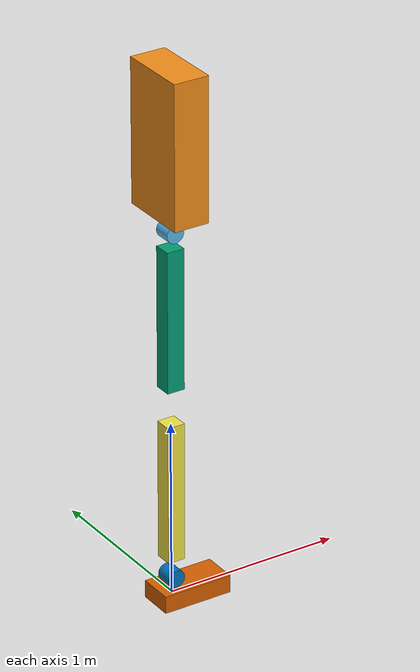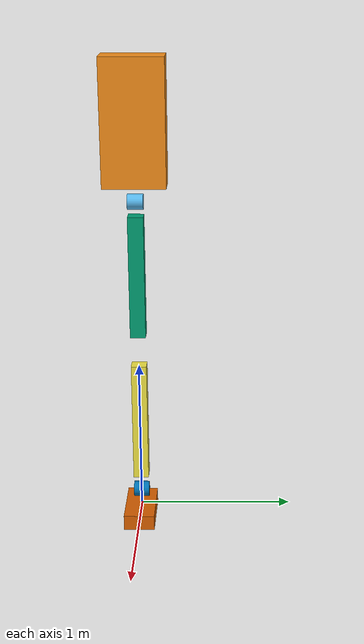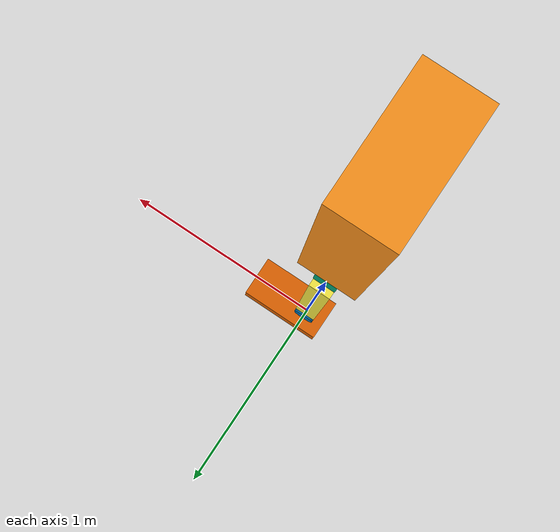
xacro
<?xml version='1.0'?>

<robot name="humanoid" xmlns:xacro="http://www.ros.org/wiki/xacro">

  <xacro:include filename="$(find humanoid_description)/urdf/humanoid.gazebo" />
  <xacro:include filename="$(find humanoid_description)/urdf/materials.xacro" />
  <xacro:include filename="$(find humanoid_description)/urdf/macros.xacro" />

  <link name='waist'>
    <inertial>
      <mass value="10.0"/>
      <origin xyz="0.0 0.0 0.5" rpy=" 0 0 0"/>
      <inertia
          ixx="0.5" ixy="0" ixz="0"
          iyy="1.0" iyz="0"
          izz="0.1"
      />
    </inertial>
    <collision name='collision'>
      <origin xyz="0.0 0.0 0.5" rpy=" 0 0 0"/>
      <geometry>
        <box size=".2 .5 .8"/>
      </geometry>
    </collision>
    <visual name='foot_visual'>
      <origin xyz="0.0 0.0 0.5" rpy=" 0 0 0"/>
      <geometry>
        <box size=".2 .4 .8"/>
      </geometry>
    </visual>
  </link>

  <link name="hip">
    <!--origin xyz="0.1 -0.13 0.1" rpy="0 1.5707 1.5707"/-->
    <collision name="collision">
      <origin xyz="0 0 0" rpy="0 1.5707 1.5707"/>
      <geometry>
        <cylinder radius="0.05" length="0.1"/>
      </geometry>
    </collision>
    <visual name="hip_visual">
      <origin xyz="0 0 0" rpy="0 1.5707 1.5707"/>
      <geometry>
        <cylinder radius="0.05" length="0.1"/>
      </geometry>
    </visual>
    <inertial>
      <origin xyz="0 0 0" rpy="0 1.5707 1.5707"/>
      <mass value="1"/>
      <cylinder_inertia m="1" r="0.05" h="0.1"/>
      <inertia
        ixx="1.0" ixy="0.0" ixz="0.0"
        iyy="1.0" iyz="0.0"
        izz="1.0"/>
    </inertial>
  </link>

  <link name='thigh'>
    <inertial>
      <mass value="10.0"/>
      <origin xyz="0.0 0.0 0.51" rpy=" 0 0 0"/>
      <inertia
          ixx="0.5" ixy="0" ixz="0"
          iyy="1.0" iyz="0"
          izz="0.1"
      />
    </inertial>
    <collision name='collision'>
      <origin xyz="0.0 0.0 0.51" rpy=" 0 0 0"/>
      <geometry>
        <box size=".1 .1 0.8"/>
      </geometry>
    </collision>
    <visual name='thigh_visual'>
      <origin xyz="0.0 0.0 0.51" rpy=" 0 0 0"/>
      <geometry>
        <box size=".1 .1 0.8"/>
      </geometry>
    </visual>
  </link>

  <link name='shank'>
    <inertial>
      <mass value="10.0"/>
      <origin xyz="0.0 0.0 0.51" rpy=" 0 0 0"/>
      <inertia
          ixx="0.5" ixy="0" ixz="0"
          iyy="1.0" iyz="0"
          izz="0.1"
      />
    </inertial>
    <collision name='collision'>
      <origin xyz="0.0 0.0 0.51" rpy=" 0 0 0"/>
      <geometry>
        <box size=".1 .1 0.8"/>
      </geometry>
    </collision>
    <visual name='shank_visual'>
      <origin xyz="0.0 0.0 0.51" rpy=" 0 0 0"/>
      <geometry>
        <box size=".1 .1 0.8"/>
      </geometry>
    </visual>
  </link>

  <link name="ankle">
    <!--origin xyz="0.1 -0.13 0.1" rpy="0 1.5707 1.5707"/-->
    <collision name="collision">
      <origin xyz="0 0 0" rpy="0 1.5707 1.5707"/>
      <geometry>
        <cylinder radius="0.05" length="0.1"/>
      </geometry>
    </collision>
    <visual name="ankle_visual">
      <origin xyz="0 0 0" rpy="0 1.5707 1.5707"/>
      <geometry>
        <cylinder radius="0.05" length="0.1"/>
      </geometry>
    </visual>
    <inertial>
      <origin xyz="0 0 0" rpy="0 1.5707 1.5707"/>
      <mass value="1"/>
      <cylinder_inertia m="1" r="0.05" h="0.1"/>
      <inertia
        ixx="1.0" ixy="0.0" ixz="0.0"
        iyy="1.0" iyz="0.0"
        izz="1.0"/>
    </inertial>
  </link>

  <link name='foot'>
    <inertial>
      <mass value="10.0"/>
      <origin xyz="0.1 0.0 0.0" rpy=" 0 0 0"/>
      <inertia
          ixx="0.5" ixy="0" ixz="0"
          iyy="1.0" iyz="0"
          izz="0.1"
      />
    </inertial>
    <collision name='collision'>
      <origin xyz="0.1 0.0 0.0" rpy=" 0 0 0"/>
      <geometry>
        <box size=".4 .2 .1"/>
      </geometry>
    </collision>
    <visual name='foot_visual'>
      <origin xyz="0.1 0.0 0.0" rpy=" 0 0 0"/>
      <geometry>
        <box size=".4 .2 .1"/>
      </geometry>
    </visual>
  </link>

  <!--lllllllllllllllllllllllllllllllllllllllllllllllllllllllllllll           joints 1         lllllllllllllllllllllllllllllllllllllllll/-->
  <joint name="waist_joint" type="revolute">
    <axis xyz="1 0 0"/>
    <limit effort="1000.0" lower="-0.5" upper="0.5" velocity="0.0"/>
    <origin rpy="0 0 0" xyz="0.0 0.0 0.0"/>
    <parent link="hip"/>
    <child link="waist"/>
  </joint>

  <joint name="hip_joint" type="revolute">
    <axis xyz="0 1 0"/>
    <limit effort="1000.0" lower="-0.5" upper="0.5" velocity="0.0"/>
    <origin rpy="0 0 0" xyz="0.0 0.0 1.0"/>
    <parent link="thigh"/>
    <child link="hip"/>
  </joint>

  <joint name="knee_joint" type="revolute">
    <axis xyz="0 1 0"/>
    <limit effort="1000.0" lower="-1.57" upper="0.0" velocity="0.0"/>
    <origin rpy="0 0 0" xyz="0.0 0.0 1.0"/>
    <parent link="shank"/>
    <child link="thigh"/>
  </joint>

  <joint name="ankle_joint" type="revolute">
    <axis xyz="0 1 0"/>
    <limit effort="1000.0" lower="-0.4" upper="0.4" velocity="0.0"/>
    <origin rpy="0 0 0" xyz="0.0 0.0 0.0"/>
    <parent link="ankle"/>
    <child link="shank"/>
  </joint>

  <joint name="anklel_joint" type="revolute">
    <axis xyz="1 0 0"/>
    <limit effort="1000.0" lower="-0.4" upper="0.4" velocity="0.0"/>
    <origin rpy="0 0 0" xyz="0.0 0.0 0.1"/>
    <parent link="foot"/>
    <child link="ankle"/>
  </joint>

  <!--lllllllllllllllllllllllllllllllllllllllllllllllllllllllllllll           second leg         lllllllllllllllllllllllllllllllllllllllll/-->
</robot>
